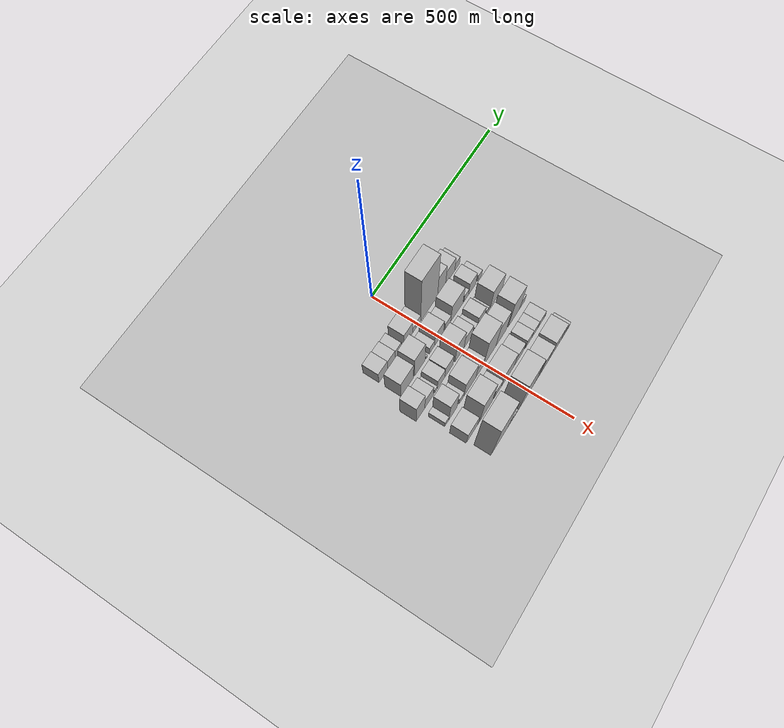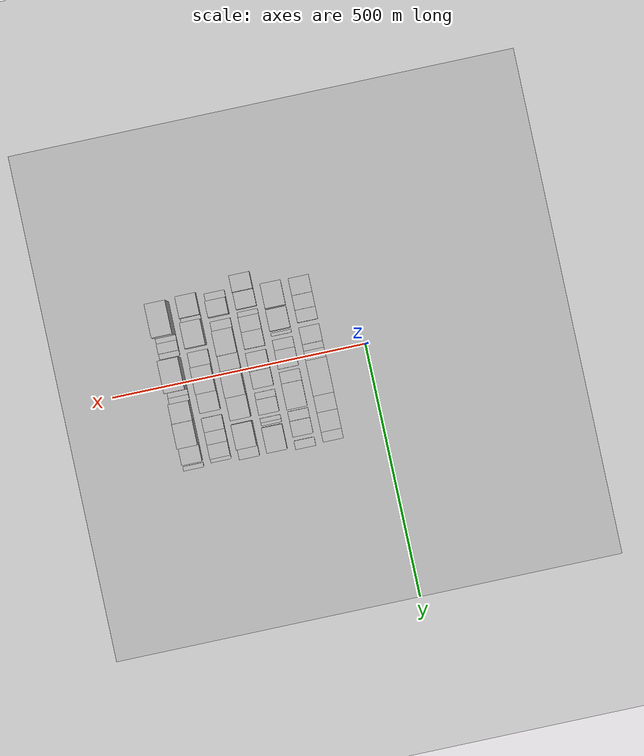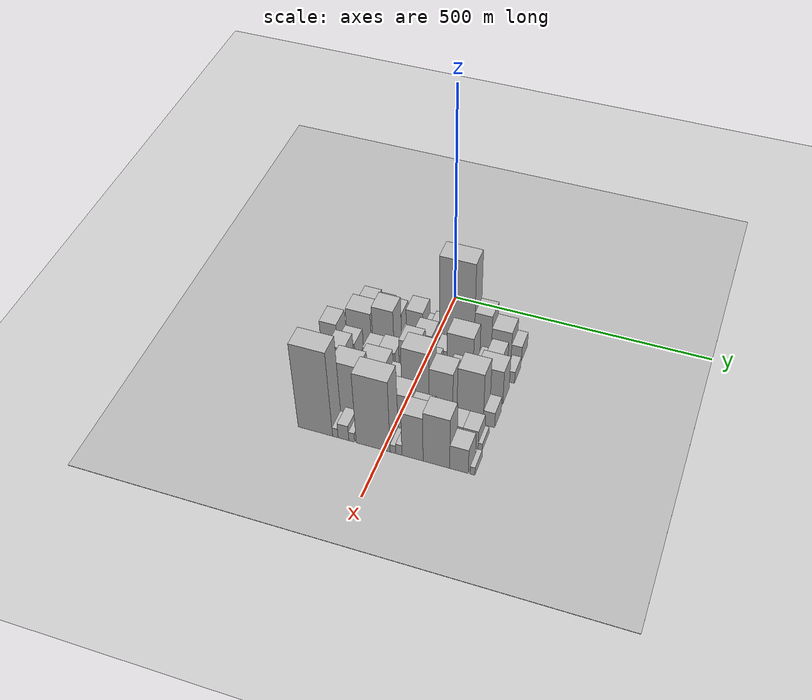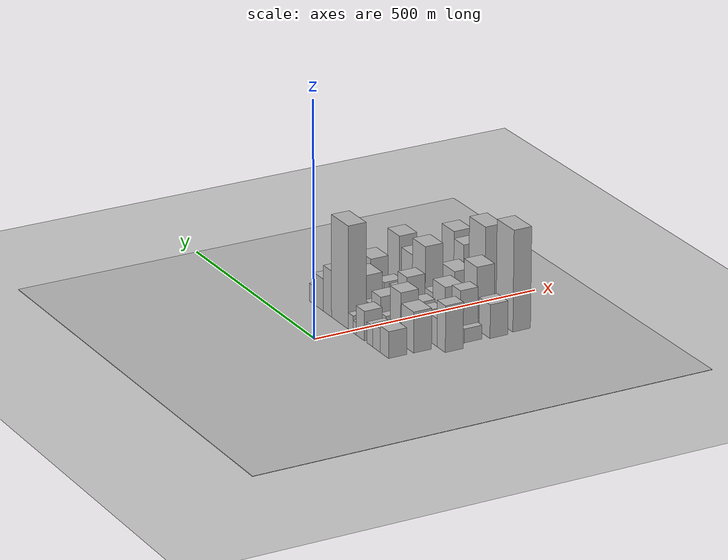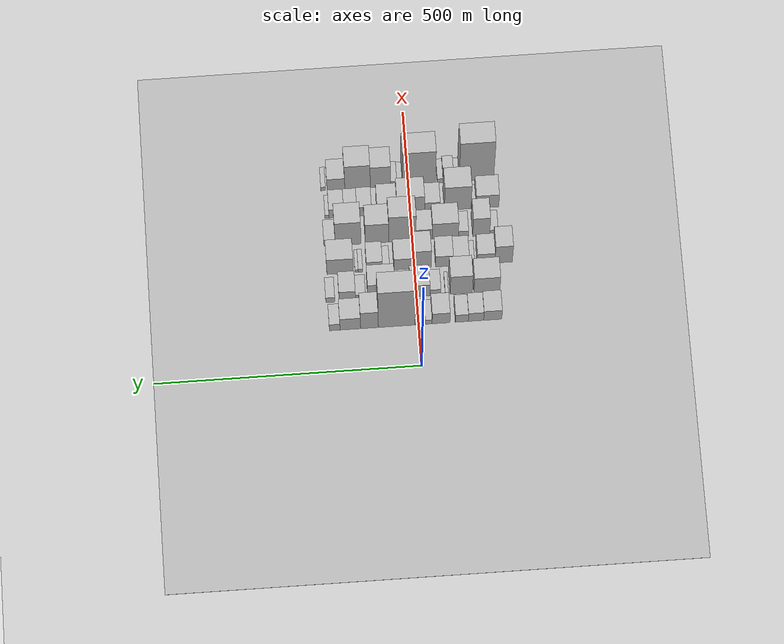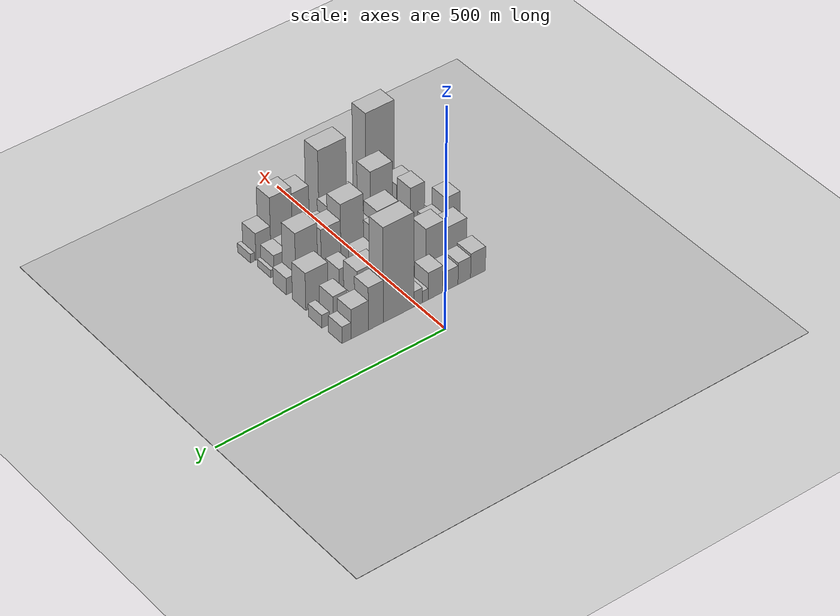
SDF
<sdf version="1.6">
 <world name="default">
  <include><name>ground_plane_1</name><uri>model://HANNAS_ground_plane</uri></include>
  <include>
   <name>ground_plane_2</name>
   <uri>model://HANNAS_ground_plane</uri>
   <pose>100 0 0  0 0 0</pose>
  </include>
  <model name="building_23">
   <static>1</static>
   <pose>100.0000 -137.2000 0 0.000000 0.000000 0.000000</pose>
   <link name="link">
    <pose>0 0 28.50 0 0 0</pose>
    <collision name="collision"><geometry><box><size>40.0000 33.9821 57.0000</size></box></geometry></collision>
    <visual name="visual">
     <cast_shadows>0</cast_shadows>
     <geometry><box><size>40.0000 33.9821 57.0000</size></box></geometry>
     <material>
      <script>
       <uri>model://HANNAS_wall/materials/scripts</uri>
       <uri>model://HANNAS_wall/materials/textures</uri>
       <name>vrc/HANNAS_wall</name>
      </script>
     </material>
    </visual>
   </link>
  </model>
  <model name="building_24">
   <static>1</static>
   <pose>100.0000 -105.8608 0 0.000000 0.000000 0.000000</pose>
   <link name="link">
    <pose>0 0 25.50 0 0 0</pose>
    <collision name="collision"><geometry><box><size>40.0000 28.6963 51.0000</size></box></geometry></collision>
    <visual name="visual">
     <cast_shadows>0</cast_shadows>
     <geometry><box><size>40.0000 28.6963 51.0000</size></box></geometry>
     <material>
      <script>
       <uri>model://HANNAS_wall/materials/scripts</uri>
       <uri>model://HANNAS_wall/materials/textures</uri>
       <name>vrc/HANNAS_wall</name>
      </script>
     </material>
    </visual>
   </link>
  </model>
  <model name="building_25">
   <static>1</static>
   <pose>100.0000 -79.3801 0 0.000000 0.000000 0.000000</pose>
   <link name="link">
    <pose>0 0 22.50 0 0 0</pose>
    <collision name="collision"><geometry><box><size>40.0000 24.2652 45.0000</size></box></geometry></collision>
    <visual name="visual">
     <cast_shadows>0</cast_shadows>
     <geometry><box><size>40.0000 24.2652 45.0000</size></box></geometry>
     <material>
      <script>
       <uri>model://HANNAS_wall/materials/scripts</uri>
       <uri>model://HANNAS_wall/materials/textures</uri>
       <name>vrc/HANNAS_wall</name>
      </script>
     </material>
    </visual>
   </link>
  </model>
  <model name="building_26">
   <static>1</static>
   <pose>100.0000 -40.5828 0 0.000000 0.000000 0.000000</pose>
   <link name="link">
    <pose>0 0 31.50 0 0 0</pose>
    <collision name="collision"><geometry><box><size>40.0000 33.3293 63.0000</size></box></geometry></collision>
    <visual name="visual">
     <cast_shadows>0</cast_shadows>
     <geometry><box><size>40.0000 33.3293 63.0000</size></box></geometry>
     <material>
      <script>
       <uri>model://HANNAS_wall/materials/scripts</uri>
       <uri>model://HANNAS_wall/materials/textures</uri>
       <name>vrc/HANNAS_wall</name>
      </script>
     </material>
    </visual>
   </link>
  </model>
  <model name="building_27">
   <static>1</static>
   <pose>100.0000 -17.4925 0 0.000000 0.000000 0.000000</pose>
   <link name="link">
    <pose>0 0 13.50 0 0 0</pose>
    <collision name="collision"><geometry><box><size>40.0000 12.8513 27.0000</size></box></geometry></collision>
    <visual name="visual">
     <cast_shadows>0</cast_shadows>
     <geometry><box><size>40.0000 12.8513 27.0000</size></box></geometry>
     <material>
      <script>
       <uri>model://HANNAS_wall/materials/scripts</uri>
       <uri>model://HANNAS_wall/materials/textures</uri>
       <name>vrc/HANNAS_wall</name>
      </script>
     </material>
    </visual>
   </link>
  </model>
  <model name="building_28">
   <static>1</static>
   <pose>100.0000 -1.4710 0 0.000000 0.000000 0.000000</pose>
   <link name="link">
    <pose>0 0 18.00 0 0 0</pose>
    <collision name="collision"><geometry><box><size>40.0000 19.1918 36.0000</size></box></geometry></collision>
    <visual name="visual">
     <cast_shadows>0</cast_shadows>
     <geometry><box><size>40.0000 19.1918 36.0000</size></box></geometry>
     <material>
      <script>
       <uri>model://HANNAS_wall/materials/scripts</uri>
       <uri>model://HANNAS_wall/materials/textures</uri>
       <name>vrc/HANNAS_wall</name>
      </script>
     </material>
    </visual>
   </link>
  </model>
  <model name="building_29">
   <static>1</static>
   <pose>100.0000 42.3173 0 0.000000 0.000000 0.000000</pose>
   <link name="link">
    <pose>0 0 109.50 0 0 0</pose>
    <collision name="collision"><geometry><box><size>40.0000 68.3846 219.0000</size></box></geometry></collision>
    <visual name="visual">
     <cast_shadows>0</cast_shadows>
     <geometry><box><size>40.0000 68.3846 219.0000</size></box></geometry>
     <material>
      <script>
       <uri>model://HANNAS_wall/materials/scripts</uri>
       <uri>model://HANNAS_wall/materials/textures</uri>
       <name>vrc/HANNAS_wall</name>
      </script>
     </material>
    </visual>
   </link>
  </model>
  <model name="building_30">
   <static>1</static>
   <pose>100.0000 93.0779 0 0.000000 0.000000 0.000000</pose>
   <link name="link">
    <pose>0 0 49.50 0 0 0</pose>
    <collision name="collision"><geometry><box><size>40.0000 33.1367 99.0000</size></box></geometry></collision>
    <visual name="visual">
     <cast_shadows>0</cast_shadows>
     <geometry><box><size>40.0000 33.1367 99.0000</size></box></geometry>
     <material>
      <script>
       <uri>model://HANNAS_wall/materials/scripts</uri>
       <uri>model://HANNAS_wall/materials/textures</uri>
       <name>vrc/HANNAS_wall</name>
      </script>
     </material>
    </visual>
   </link>
  </model>
  <model name="building_31">
   <static>1</static>
   <pose>100.0000 128.8266 0 0.000000 0.000000 0.000000</pose>
   <link name="link">
    <pose>0 0 34.50 0 0 0</pose>
    <collision name="collision"><geometry><box><size>40.0000 38.3606 69.0000</size></box></geometry></collision>
    <visual name="visual">
     <cast_shadows>0</cast_shadows>
     <geometry><box><size>40.0000 38.3606 69.0000</size></box></geometry>
     <material>
      <script>
       <uri>model://HANNAS_wall/materials/scripts</uri>
       <uri>model://HANNAS_wall/materials/textures</uri>
       <name>vrc/HANNAS_wall</name>
      </script>
     </material>
    </visual>
   </link>
  </model>
  <model name="building_32">
   <static>1</static>
   <pose>100.0000 157.9525 0 0.000000 0.000000 0.000000</pose>
   <link name="link">
    <pose>0 0 19.50 0 0 0</pose>
    <collision name="collision"><geometry><box><size>40.0000 19.8913 39.0000</size></box></geometry></collision>
    <visual name="visual">
     <cast_shadows>0</cast_shadows>
     <geometry><box><size>40.0000 19.8913 39.0000</size></box></geometry>
     <material>
      <script>
       <uri>model://HANNAS_wall/materials/scripts</uri>
       <uri>model://HANNAS_wall/materials/textures</uri>
       <name>vrc/HANNAS_wall</name>
      </script>
     </material>
    </visual>
   </link>
  </model>
  <model name="building_71">
   <static>1</static>
   <pose>155.0000 -130.4734 0 0.000000 0.000000 0.000000</pose>
   <link name="link">
    <pose>0 0 43.50 0 0 0</pose>
    <collision name="collision"><geometry><box><size>40.0000 48.5117 87.0000</size></box></geometry></collision>
    <visual name="visual">
     <cast_shadows>0</cast_shadows>
     <geometry><box><size>40.0000 48.5117 87.0000</size></box></geometry>
     <material>
      <script>
       <uri>model://HANNAS_wall/materials/scripts</uri>
       <uri>model://HANNAS_wall/materials/textures</uri>
       <name>vrc/HANNAS_wall</name>
      </script>
     </material>
    </visual>
   </link>
  </model>
  <model name="building_72">
   <static>1</static>
   <pose>155.0000 -82.3891 0 0.000000 0.000000 0.000000</pose>
   <link name="link">
    <pose>0 0 54.00 0 0 0</pose>
    <collision name="collision"><geometry><box><size>40.0000 41.6569 108.0000</size></box></geometry></collision>
    <visual name="visual">
     <cast_shadows>0</cast_shadows>
     <geometry><box><size>40.0000 41.6569 108.0000</size></box></geometry>
     <material>
      <script>
       <uri>model://HANNAS_wall/materials/scripts</uri>
       <uri>model://HANNAS_wall/materials/textures</uri>
       <name>vrc/HANNAS_wall</name>
      </script>
     </material>
    </visual>
   </link>
  </model>
  <model name="building_73">
   <static>1</static>
   <pose>155.0000 -55.4778 0 0.000000 0.000000 0.000000</pose>
   <link name="link">
    <pose>0 0 7.50 0 0 0</pose>
    <collision name="collision"><geometry><box><size>40.0000 6.1658 15.0000</size></box></geometry></collision>
    <visual name="visual">
     <cast_shadows>0</cast_shadows>
     <geometry><box><size>40.0000 6.1658 15.0000</size></box></geometry>
     <material>
      <script>
       <uri>model://HANNAS_wall/materials/scripts</uri>
       <uri>model://HANNAS_wall/materials/textures</uri>
       <name>vrc/HANNAS_wall</name>
      </script>
     </material>
    </visual>
   </link>
  </model>
  <model name="building_74">
   <static>1</static>
   <pose>155.0000 -34.0260 0 0.000000 0.000000 0.000000</pose>
   <link name="link">
    <pose>0 0 18.00 0 0 0</pose>
    <collision name="collision"><geometry><box><size>40.0000 20.7378 36.0000</size></box></geometry></collision>
    <visual name="visual">
     <cast_shadows>0</cast_shadows>
     <geometry><box><size>40.0000 20.7378 36.0000</size></box></geometry>
     <material>
      <script>
       <uri>model://HANNAS_wall/materials/scripts</uri>
       <uri>model://HANNAS_wall/materials/textures</uri>
       <name>vrc/HANNAS_wall</name>
      </script>
     </material>
    </visual>
   </link>
  </model>
  <model name="building_75">
   <static>1</static>
   <pose>155.0000 -5.4607 0 0.000000 0.000000 0.000000</pose>
   <link name="link">
    <pose>0 0 34.50 0 0 0</pose>
    <collision name="collision"><geometry><box><size>40.0000 36.3928 69.0000</size></box></geometry></collision>
    <visual name="visual">
     <cast_shadows>0</cast_shadows>
     <geometry><box><size>40.0000 36.3928 69.0000</size></box></geometry>
     <material>
      <script>
       <uri>model://HANNAS_wall/materials/scripts</uri>
       <uri>model://HANNAS_wall/materials/textures</uri>
       <name>vrc/HANNAS_wall</name>
      </script>
     </material>
    </visual>
   </link>
  </model>
  <model name="building_76">
   <static>1</static>
   <pose>155.0000 30.1104 0 0.000000 0.000000 0.000000</pose>
   <link name="link">
    <pose>0 0 19.50 0 0 0</pose>
    <collision name="collision"><geometry><box><size>40.0000 22.7493 39.0000</size></box></geometry></collision>
    <visual name="visual">
     <cast_shadows>0</cast_shadows>
     <geometry><box><size>40.0000 22.7493 39.0000</size></box></geometry>
     <material>
      <script>
       <uri>model://HANNAS_wall/materials/scripts</uri>
       <uri>model://HANNAS_wall/materials/textures</uri>
       <name>vrc/HANNAS_wall</name>
      </script>
     </material>
    </visual>
   </link>
  </model>
  <model name="building_77">
   <static>1</static>
   <pose>155.0000 66.9326 0 0.000000 0.000000 0.000000</pose>
   <link name="link">
    <pose>0 0 45.00 0 0 0</pose>
    <collision name="collision"><geometry><box><size>40.0000 50.8952 90.0000</size></box></geometry></collision>
    <visual name="visual">
     <cast_shadows>0</cast_shadows>
     <geometry><box><size>40.0000 50.8952 90.0000</size></box></geometry>
     <material>
      <script>
       <uri>model://HANNAS_wall/materials/scripts</uri>
       <uri>model://HANNAS_wall/materials/textures</uri>
       <name>vrc/HANNAS_wall</name>
      </script>
     </material>
    </visual>
   </link>
  </model>
  <model name="building_78">
   <static>1</static>
   <pose>155.0000 105.8786 0 0.000000 0.000000 0.000000</pose>
   <link name="link">
    <pose>0 0 16.50 0 0 0</pose>
    <collision name="collision"><geometry><box><size>40.0000 18.9969 33.0000</size></box></geometry></collision>
    <visual name="visual">
     <cast_shadows>0</cast_shadows>
     <geometry><box><size>40.0000 18.9969 33.0000</size></box></geometry>
     <material>
      <script>
       <uri>model://HANNAS_wall/materials/scripts</uri>
       <uri>model://HANNAS_wall/materials/textures</uri>
       <name>vrc/HANNAS_wall</name>
      </script>
     </material>
    </visual>
   </link>
  </model>
  <model name="building_79">
   <static>1</static>
   <pose>155.0000 130.7089 0 0.000000 0.000000 0.000000</pose>
   <link name="link">
    <pose>0 0 30.00 0 0 0</pose>
    <collision name="collision"><geometry><box><size>40.0000 30.6637 60.0000</size></box></geometry></collision>
    <visual name="visual">
     <cast_shadows>0</cast_shadows>
     <geometry><box><size>40.0000 30.6637 60.0000</size></box></geometry>
     <material>
      <script>
       <uri>model://HANNAS_wall/materials/scripts</uri>
       <uri>model://HANNAS_wall/materials/textures</uri>
       <name>vrc/HANNAS_wall</name>
      </script>
     </material>
    </visual>
   </link>
  </model>
  <model name="building_80">
   <static>1</static>
   <pose>155.0000 162.5400 0 0.000000 0.000000 0.000000</pose>
   <link name="link">
    <pose>0 0 15.00 0 0 0</pose>
    <collision name="collision"><geometry><box><size>40.0000 16.9986 30.0000</size></box></geometry></collision>
    <visual name="visual">
     <cast_shadows>0</cast_shadows>
     <geometry><box><size>40.0000 16.9986 30.0000</size></box></geometry>
     <material>
      <script>
       <uri>model://HANNAS_wall/materials/scripts</uri>
       <uri>model://HANNAS_wall/materials/textures</uri>
       <name>vrc/HANNAS_wall</name>
      </script>
     </material>
    </visual>
   </link>
  </model>
  <model name="building_124">
   <static>1</static>
   <pose>210.0000 -166.0199 0 0.000000 0.000000 0.000000</pose>
   <link name="link">
    <pose>0 0 49.50 0 0 0</pose>
    <collision name="collision"><geometry><box><size>40.0000 32.7210 99.0000</size></box></geometry></collision>
    <visual name="visual">
     <cast_shadows>0</cast_shadows>
     <geometry><box><size>40.0000 32.7210 99.0000</size></box></geometry>
     <material>
      <script>
       <uri>model://HANNAS_wall/materials/scripts</uri>
       <uri>model://HANNAS_wall/materials/textures</uri>
       <name>vrc/HANNAS_wall</name>
      </script>
     </material>
    </visual>
   </link>
  </model>
  <model name="building_125">
   <static>1</static>
   <pose>210.0000 -133.0223 0 0.000000 0.000000 0.000000</pose>
   <link name="link">
    <pose>0 0 30.00 0 0 0</pose>
    <collision name="collision"><geometry><box><size>40.0000 33.2743 60.0000</size></box></geometry></collision>
    <visual name="visual">
     <cast_shadows>0</cast_shadows>
     <geometry><box><size>40.0000 33.2743 60.0000</size></box></geometry>
     <material>
      <script>
       <uri>model://HANNAS_wall/materials/scripts</uri>
       <uri>model://HANNAS_wall/materials/textures</uri>
       <name>vrc/HANNAS_wall</name>
      </script>
     </material>
    </visual>
   </link>
  </model>
  <model name="building_126">
   <static>1</static>
   <pose>210.0000 -106.1887 0 0.000000 0.000000 0.000000</pose>
   <link name="link">
    <pose>0 0 12.00 0 0 0</pose>
    <collision name="collision"><geometry><box><size>40.0000 10.3928 24.0000</size></box></geometry></collision>
    <visual name="visual">
     <cast_shadows>0</cast_shadows>
     <geometry><box><size>40.0000 10.3928 24.0000</size></box></geometry>
     <material>
      <script>
       <uri>model://HANNAS_wall/materials/scripts</uri>
       <uri>model://HANNAS_wall/materials/textures</uri>
       <name>vrc/HANNAS_wall</name>
      </script>
     </material>
    </visual>
   </link>
  </model>
  <model name="building_127">
   <static>1</static>
   <pose>210.0000 -86.1601 0 0.000000 0.000000 0.000000</pose>
   <link name="link">
    <pose>0 0 28.50 0 0 0</pose>
    <collision name="collision"><geometry><box><size>40.0000 29.6645 57.0000</size></box></geometry></collision>
    <visual name="visual">
     <cast_shadows>0</cast_shadows>
     <geometry><box><size>40.0000 29.6645 57.0000</size></box></geometry>
     <material>
      <script>
       <uri>model://HANNAS_wall/materials/scripts</uri>
       <uri>model://HANNAS_wall/materials/textures</uri>
       <name>vrc/HANNAS_wall</name>
      </script>
     </material>
    </visual>
   </link>
  </model>
  <model name="building_128">
   <static>1</static>
   <pose>210.0000 -54.8213 0 0.000000 0.000000 0.000000</pose>
   <link name="link">
    <pose>0 0 31.50 0 0 0</pose>
    <collision name="collision"><geometry><box><size>40.0000 33.0132 63.0000</size></box></geometry></collision>
    <visual name="visual">
     <cast_shadows>0</cast_shadows>
     <geometry><box><size>40.0000 33.0132 63.0000</size></box></geometry>
     <material>
      <script>
       <uri>model://HANNAS_wall/materials/scripts</uri>
       <uri>model://HANNAS_wall/materials/textures</uri>
       <name>vrc/HANNAS_wall</name>
      </script>
     </material>
    </visual>
   </link>
  </model>
  <model name="building_129">
   <static>1</static>
   <pose>210.0000 -12.1908 0 0.000000 0.000000 0.000000</pose>
   <link name="link">
    <pose>0 0 51.00 0 0 0</pose>
    <collision name="collision"><geometry><box><size>40.0000 36.2478 102.0000</size></box></geometry></collision>
    <visual name="visual">
     <cast_shadows>0</cast_shadows>
     <geometry><box><size>40.0000 36.2478 102.0000</size></box></geometry>
     <material>
      <script>
       <uri>model://HANNAS_wall/materials/scripts</uri>
       <uri>model://HANNAS_wall/materials/textures</uri>
       <name>vrc/HANNAS_wall</name>
      </script>
     </material>
    </visual>
   </link>
  </model>
  <model name="building_130">
   <static>1</static>
   <pose>210.0000 22.8909 0 0.000000 0.000000 0.000000</pose>
   <link name="link">
    <pose>0 0 31.50 0 0 0</pose>
    <collision name="collision"><geometry><box><size>40.0000 33.9156 63.0000</size></box></geometry></collision>
    <visual name="visual">
     <cast_shadows>0</cast_shadows>
     <geometry><box><size>40.0000 33.9156 63.0000</size></box></geometry>
     <material>
      <script>
       <uri>model://HANNAS_wall/materials/scripts</uri>
       <uri>model://HANNAS_wall/materials/textures</uri>
       <name>vrc/HANNAS_wall</name>
      </script>
     </material>
    </visual>
   </link>
  </model>
  <model name="building_131">
   <static>1</static>
   <pose>210.0000 54.5487 0 0.000000 0.000000 0.000000</pose>
   <link name="link">
    <pose>0 0 13.50 0 0 0</pose>
    <collision name="collision"><geometry><box><size>40.0000 13.3999 27.0000</size></box></geometry></collision>
    <visual name="visual">
     <cast_shadows>0</cast_shadows>
     <geometry><box><size>40.0000 13.3999 27.0000</size></box></geometry>
     <material>
      <script>
       <uri>model://HANNAS_wall/materials/scripts</uri>
       <uri>model://HANNAS_wall/materials/textures</uri>
       <name>vrc/HANNAS_wall</name>
      </script>
     </material>
    </visual>
   </link>
  </model>
  <model name="building_132">
   <static>1</static>
   <pose>210.0000 76.2007 0 0.000000 0.000000 0.000000</pose>
   <link name="link">
    <pose>0 0 28.50 0 0 0</pose>
    <collision name="collision"><geometry><box><size>40.0000 29.9041 57.0000</size></box></geometry></collision>
    <visual name="visual">
     <cast_shadows>0</cast_shadows>
     <geometry><box><size>40.0000 29.9041 57.0000</size></box></geometry>
     <material>
      <script>
       <uri>model://HANNAS_wall/materials/scripts</uri>
       <uri>model://HANNAS_wall/materials/textures</uri>
       <name>vrc/HANNAS_wall</name>
      </script>
     </material>
    </visual>
   </link>
  </model>
  <model name="building_133">
   <static>1</static>
   <pose>210.0000 102.4348 0 0.000000 0.000000 0.000000</pose>
   <link name="link">
    <pose>0 0 9.00 0 0 0</pose>
    <collision name="collision"><geometry><box><size>40.0000 8.5641 18.0000</size></box></geometry></collision>
    <visual name="visual">
     <cast_shadows>0</cast_shadows>
     <geometry><box><size>40.0000 8.5641 18.0000</size></box></geometry>
     <material>
      <script>
       <uri>model://HANNAS_wall/materials/scripts</uri>
       <uri>model://HANNAS_wall/materials/textures</uri>
       <name>vrc/HANNAS_wall</name>
      </script>
     </material>
    </visual>
   </link>
  </model>
  <model name="building_134">
   <static>1</static>
   <pose>210.0000 109.7560 0 0.000000 0.000000 0.000000</pose>
   <link name="link">
    <pose>0 0 7.50 0 0 0</pose>
    <collision name="collision"><geometry><box><size>40.0000 6.0784 15.0000</size></box></geometry></collision>
    <visual name="visual">
     <cast_shadows>0</cast_shadows>
     <geometry><box><size>40.0000 6.0784 15.0000</size></box></geometry>
     <material>
      <script>
       <uri>model://HANNAS_wall/materials/scripts</uri>
       <uri>model://HANNAS_wall/materials/textures</uri>
       <name>vrc/HANNAS_wall</name>
      </script>
     </material>
    </visual>
   </link>
  </model>
  <model name="building_135">
   <static>1</static>
   <pose>210.0000 140.5947 0 0.000000 0.000000 0.000000</pose>
   <link name="link">
    <pose>0 0 43.50 0 0 0</pose>
    <collision name="collision"><geometry><box><size>40.0000 49.5991 87.0000</size></box></geometry></collision>
    <visual name="visual">
     <cast_shadows>0</cast_shadows>
     <geometry><box><size>40.0000 49.5991 87.0000</size></box></geometry>
     <material>
      <script>
       <uri>model://HANNAS_wall/materials/scripts</uri>
       <uri>model://HANNAS_wall/materials/textures</uri>
       <name>vrc/HANNAS_wall</name>
      </script>
     </material>
    </visual>
   </link>
  </model>
  <model name="building_179">
   <static>1</static>
   <pose>265.0000 -151.9052 0 0.000000 0.000000 0.000000</pose>
   <link name="link">
    <pose>0 0 15.00 0 0 0</pose>
    <collision name="collision"><geometry><box><size>40.0000 15.7053 30.0000</size></box></geometry></collision>
    <visual name="visual">
     <cast_shadows>0</cast_shadows>
     <geometry><box><size>40.0000 15.7053 30.0000</size></box></geometry>
     <material>
      <script>
       <uri>model://HANNAS_wall/materials/scripts</uri>
       <uri>model://HANNAS_wall/materials/textures</uri>
       <name>vrc/HANNAS_wall</name>
      </script>
     </material>
    </visual>
   </link>
  </model>
  <model name="building_180">
   <static>1</static>
   <pose>265.0000 -128.1271 0 0.000000 0.000000 0.000000</pose>
   <link name="link">
    <pose>0 0 52.50 0 0 0</pose>
    <collision name="collision"><geometry><box><size>40.0000 31.8509 105.0000</size></box></geometry></collision>
    <visual name="visual">
     <cast_shadows>0</cast_shadows>
     <geometry><box><size>40.0000 31.8509 105.0000</size></box></geometry>
     <material>
      <script>
       <uri>model://HANNAS_wall/materials/scripts</uri>
       <uri>model://HANNAS_wall/materials/textures</uri>
       <name>vrc/HANNAS_wall</name>
      </script>
     </material>
    </visual>
   </link>
  </model>
  <model name="building_181">
   <static>1</static>
   <pose>265.0000 -94.6995 0 0.000000 0.000000 0.000000</pose>
   <link name="link">
    <pose>0 0 18.00 0 0 0</pose>
    <collision name="collision"><geometry><box><size>40.0000 19.0044 36.0000</size></box></geometry></collision>
    <visual name="visual">
     <cast_shadows>0</cast_shadows>
     <geometry><box><size>40.0000 19.0044 36.0000</size></box></geometry>
     <material>
      <script>
       <uri>model://HANNAS_wall/materials/scripts</uri>
       <uri>model://HANNAS_wall/materials/textures</uri>
       <name>vrc/HANNAS_wall</name>
      </script>
     </material>
    </visual>
   </link>
  </model>
  <model name="building_182">
   <static>1</static>
   <pose>265.0000 -60.7194 0 0.000000 0.000000 0.000000</pose>
   <link name="link">
    <pose>0 0 45.00 0 0 0</pose>
    <collision name="collision"><geometry><box><size>40.0000 48.9558 90.0000</size></box></geometry></collision>
    <visual name="visual">
     <cast_shadows>0</cast_shadows>
     <geometry><box><size>40.0000 48.9558 90.0000</size></box></geometry>
     <material>
      <script>
       <uri>model://HANNAS_wall/materials/scripts</uri>
       <uri>model://HANNAS_wall/materials/textures</uri>
       <name>vrc/HANNAS_wall</name>
      </script>
     </material>
    </visual>
   </link>
  </model>
  <model name="building_183">
   <static>1</static>
   <pose>265.0000 -20.9173 0 0.000000 0.000000 0.000000</pose>
   <link name="link">
    <pose>0 0 30.00 0 0 0</pose>
    <collision name="collision"><geometry><box><size>40.0000 30.6484 60.0000</size></box></geometry></collision>
    <visual name="visual">
     <cast_shadows>0</cast_shadows>
     <geometry><box><size>40.0000 30.6484 60.0000</size></box></geometry>
     <material>
      <script>
       <uri>model://HANNAS_wall/materials/scripts</uri>
       <uri>model://HANNAS_wall/materials/textures</uri>
       <name>vrc/HANNAS_wall</name>
      </script>
     </material>
    </visual>
   </link>
  </model>
  <model name="building_184">
   <static>1</static>
   <pose>265.0000 20.0325 0 0.000000 0.000000 0.000000</pose>
   <link name="link">
    <pose>0 0 73.50 0 0 0</pose>
    <collision name="collision"><geometry><box><size>40.0000 51.2513 147.0000</size></box></geometry></collision>
    <visual name="visual">
     <cast_shadows>0</cast_shadows>
     <geometry><box><size>40.0000 51.2513 147.0000</size></box></geometry>
     <material>
      <script>
       <uri>model://HANNAS_wall/materials/scripts</uri>
       <uri>model://HANNAS_wall/materials/textures</uri>
       <name>vrc/HANNAS_wall</name>
      </script>
     </material>
    </visual>
   </link>
  </model>
  <model name="building_185">
   <static>1</static>
   <pose>265.0000 67.6615 0 0.000000 0.000000 0.000000</pose>
   <link name="link">
    <pose>0 0 55.50 0 0 0</pose>
    <collision name="collision"><geometry><box><size>40.0000 44.0066 111.0000</size></box></geometry></collision>
    <visual name="visual">
     <cast_shadows>0</cast_shadows>
     <geometry><box><size>40.0000 44.0066 111.0000</size></box></geometry>
     <material>
      <script>
       <uri>model://HANNAS_wall/materials/scripts</uri>
       <uri>model://HANNAS_wall/materials/textures</uri>
       <name>vrc/HANNAS_wall</name>
      </script>
     </material>
    </visual>
   </link>
  </model>
  <model name="building_186">
   <static>1</static>
   <pose>265.0000 121.9704 0 0.000000 0.000000 0.000000</pose>
   <link name="link">
    <pose>0 0 66.00 0 0 0</pose>
    <collision name="collision"><geometry><box><size>40.0000 48.6113 132.0000</size></box></geometry></collision>
    <visual name="visual">
     <cast_shadows>0</cast_shadows>
     <geometry><box><size>40.0000 48.6113 132.0000</size></box></geometry>
     <material>
      <script>
       <uri>model://HANNAS_wall/materials/scripts</uri>
       <uri>model://HANNAS_wall/materials/textures</uri>
       <name>vrc/HANNAS_wall</name>
      </script>
     </material>
    </visual>
   </link>
  </model>
  <model name="building_187">
   <static>1</static>
   <pose>265.0000 156.8510 0 0.000000 0.000000 0.000000</pose>
   <link name="link">
    <pose>0 0 19.50 0 0 0</pose>
    <collision name="collision"><geometry><box><size>40.0000 21.1498 39.0000</size></box></geometry></collision>
    <visual name="visual">
     <cast_shadows>0</cast_shadows>
     <geometry><box><size>40.0000 21.1498 39.0000</size></box></geometry>
     <material>
      <script>
       <uri>model://HANNAS_wall/materials/scripts</uri>
       <uri>model://HANNAS_wall/materials/textures</uri>
       <name>vrc/HANNAS_wall</name>
      </script>
     </material>
    </visual>
   </link>
  </model>
  <model name="building_229">
   <static>1</static>
   <pose>320.0000 -144.0290 0 0.000000 0.000000 0.000000</pose>
   <link name="link">
    <pose>0 0 36.00 0 0 0</pose>
    <collision name="collision"><geometry><box><size>40.0000 42.8596 72.0000</size></box></geometry></collision>
    <visual name="visual">
     <cast_shadows>0</cast_shadows>
     <geometry><box><size>40.0000 42.8596 72.0000</size></box></geometry>
     <material>
      <script>
       <uri>model://HANNAS_wall/materials/scripts</uri>
       <uri>model://HANNAS_wall/materials/textures</uri>
       <name>vrc/HANNAS_wall</name>
      </script>
     </material>
    </visual>
   </link>
  </model>
  <model name="building_230">
   <static>1</static>
   <pose>320.0000 -117.9136 0 0.000000 0.000000 0.000000</pose>
   <link name="link">
    <pose>0 0 10.50 0 0 0</pose>
    <collision name="collision"><geometry><box><size>40.0000 9.3712 21.0000</size></box></geometry></collision>
    <visual name="visual">
     <cast_shadows>0</cast_shadows>
     <geometry><box><size>40.0000 9.3712 21.0000</size></box></geometry>
     <material>
      <script>
       <uri>model://HANNAS_wall/materials/scripts</uri>
       <uri>model://HANNAS_wall/materials/textures</uri>
       <name>vrc/HANNAS_wall</name>
      </script>
     </material>
    </visual>
   </link>
  </model>
  <model name="building_231">
   <static>1</static>
   <pose>320.0000 -88.0555 0 0.000000 0.000000 0.000000</pose>
   <link name="link">
    <pose>0 0 66.00 0 0 0</pose>
    <collision name="collision"><geometry><box><size>40.0000 50.3448 132.0000</size></box></geometry></collision>
    <visual name="visual">
     <cast_shadows>0</cast_shadows>
     <geometry><box><size>40.0000 50.3448 132.0000</size></box></geometry>
     <material>
      <script>
       <uri>model://HANNAS_wall/materials/scripts</uri>
       <uri>model://HANNAS_wall/materials/textures</uri>
       <name>vrc/HANNAS_wall</name>
      </script>
     </material>
    </visual>
   </link>
  </model>
  <model name="building_232">
   <static>1</static>
   <pose>320.0000 -40.1724 0 0.000000 0.000000 0.000000</pose>
   <link name="link">
    <pose>0 0 25.50 0 0 0</pose>
    <collision name="collision"><geometry><box><size>40.0000 29.4215 51.0000</size></box></geometry></collision>
    <visual name="visual">
     <cast_shadows>0</cast_shadows>
     <geometry><box><size>40.0000 29.4215 51.0000</size></box></geometry>
     <material>
      <script>
       <uri>model://HANNAS_wall/materials/scripts</uri>
       <uri>model://HANNAS_wall/materials/textures</uri>
       <name>vrc/HANNAS_wall</name>
      </script>
     </material>
    </visual>
   </link>
  </model>
  <model name="building_233">
   <static>1</static>
   <pose>320.0000 0.6732 0 0.000000 0.000000 0.000000</pose>
   <link name="link">
    <pose>0 0 45.00 0 0 0</pose>
    <collision name="collision"><geometry><box><size>40.0000 52.2697 90.0000</size></box></geometry></collision>
    <visual name="visual">
     <cast_shadows>0</cast_shadows>
     <geometry><box><size>40.0000 52.2697 90.0000</size></box></geometry>
     <material>
      <script>
       <uri>model://HANNAS_wall/materials/scripts</uri>
       <uri>model://HANNAS_wall/materials/textures</uri>
       <name>vrc/HANNAS_wall</name>
      </script>
     </material>
    </visual>
   </link>
  </model>
  <model name="building_234">
   <static>1</static>
   <pose>320.0000 45.4382 0 0.000000 0.000000 0.000000</pose>
   <link name="link">
    <pose>0 0 31.50 0 0 0</pose>
    <collision name="collision"><geometry><box><size>40.0000 37.2603 63.0000</size></box></geometry></collision>
    <visual name="visual">
     <cast_shadows>0</cast_shadows>
     <geometry><box><size>40.0000 37.2603 63.0000</size></box></geometry>
     <material>
      <script>
       <uri>model://HANNAS_wall/materials/scripts</uri>
       <uri>model://HANNAS_wall/materials/textures</uri>
       <name>vrc/HANNAS_wall</name>
      </script>
     </material>
    </visual>
   </link>
  </model>
  <model name="building_235">
   <static>1</static>
   <pose>320.0000 87.8827 0 0.000000 0.000000 0.000000</pose>
   <link name="link">
    <pose>0 0 25.50 0 0 0</pose>
    <collision name="collision"><geometry><box><size>40.0000 27.6287 51.0000</size></box></geometry></collision>
    <visual name="visual">
     <cast_shadows>0</cast_shadows>
     <geometry><box><size>40.0000 27.6287 51.0000</size></box></geometry>
     <material>
      <script>
       <uri>model://HANNAS_wall/materials/scripts</uri>
       <uri>model://HANNAS_wall/materials/textures</uri>
       <name>vrc/HANNAS_wall</name>
      </script>
     </material>
    </visual>
   </link>
  </model>
  <model name="building_236">
   <static>1</static>
   <pose>320.0000 114.0612 0 0.000000 0.000000 0.000000</pose>
   <link name="link">
    <pose>0 0 24.00 0 0 0</pose>
    <collision name="collision"><geometry><box><size>40.0000 24.7283 48.0000</size></box></geometry></collision>
    <visual name="visual">
     <cast_shadows>0</cast_shadows>
     <geometry><box><size>40.0000 24.7283 48.0000</size></box></geometry>
     <material>
      <script>
       <uri>model://HANNAS_wall/materials/scripts</uri>
       <uri>model://HANNAS_wall/materials/textures</uri>
       <name>vrc/HANNAS_wall</name>
      </script>
     </material>
    </visual>
   </link>
  </model>
  <model name="building_237">
   <static>1</static>
   <pose>320.0000 140.4233 0 0.000000 0.000000 0.000000</pose>
   <link name="link">
    <pose>0 0 24.00 0 0 0</pose>
    <collision name="collision"><geometry><box><size>40.0000 27.9959 48.0000</size></box></geometry></collision>
    <visual name="visual">
     <cast_shadows>0</cast_shadows>
     <geometry><box><size>40.0000 27.9959 48.0000</size></box></geometry>
     <material>
      <script>
       <uri>model://HANNAS_wall/materials/scripts</uri>
       <uri>model://HANNAS_wall/materials/textures</uri>
       <name>vrc/HANNAS_wall</name>
      </script>
     </material>
    </visual>
   </link>
  </model>
  <model name="building_238">
   <static>1</static>
   <pose>320.0000 158.1561 0 0.000000 0.000000 0.000000</pose>
   <link name="link">
    <pose>0 0 9.00 0 0 0</pose>
    <collision name="collision"><geometry><box><size>40.0000 7.4696 18.0000</size></box></geometry></collision>
    <visual name="visual">
     <cast_shadows>0</cast_shadows>
     <geometry><box><size>40.0000 7.4696 18.0000</size></box></geometry>
     <material>
      <script>
       <uri>model://HANNAS_wall/materials/scripts</uri>
       <uri>model://HANNAS_wall/materials/textures</uri>
       <name>vrc/HANNAS_wall</name>
      </script>
     </material>
    </visual>
   </link>
  </model>
  <model name="building_286">
   <static>1</static>
   <pose>375.0000 -127.3385 0 0.000000 0.000000 0.000000</pose>
   <link name="link">
    <pose>0 0 108.00 0 0 0</pose>
    <collision name="collision"><geometry><box><size>40.0000 65.1609 216.0000</size></box></geometry></collision>
    <visual name="visual">
     <cast_shadows>0</cast_shadows>
     <geometry><box><size>40.0000 65.1609 216.0000</size></box></geometry>
     <material>
      <script>
       <uri>model://HANNAS_wall/materials/scripts</uri>
       <uri>model://HANNAS_wall/materials/textures</uri>
       <name>vrc/HANNAS_wall</name>
      </script>
     </material>
    </visual>
   </link>
  </model>
  <model name="building_287">
   <static>1</static>
   <pose>375.0000 -89.5445 0 0.000000 0.000000 0.000000</pose>
   <link name="link">
    <pose>0 0 12.00 0 0 0</pose>
    <collision name="collision"><geometry><box><size>40.0000 10.4271 24.0000</size></box></geometry></collision>
    <visual name="visual">
     <cast_shadows>0</cast_shadows>
     <geometry><box><size>40.0000 10.4271 24.0000</size></box></geometry>
     <material>
      <script>
       <uri>model://HANNAS_wall/materials/scripts</uri>
       <uri>model://HANNAS_wall/materials/textures</uri>
       <name>vrc/HANNAS_wall</name>
      </script>
     </material>
    </visual>
   </link>
  </model>
  <model name="building_288">
   <static>1</static>
   <pose>375.0000 -74.2941 0 0.000000 0.000000 0.000000</pose>
   <link name="link">
    <pose>0 0 19.50 0 0 0</pose>
    <collision name="collision"><geometry><box><size>40.0000 20.0737 39.0000</size></box></geometry></collision>
    <visual name="visual">
     <cast_shadows>0</cast_shadows>
     <geometry><box><size>40.0000 20.0737 39.0000</size></box></geometry>
     <material>
      <script>
       <uri>model://HANNAS_wall/materials/scripts</uri>
       <uri>model://HANNAS_wall/materials/textures</uri>
       <name>vrc/HANNAS_wall</name>
      </script>
     </material>
    </visual>
   </link>
  </model>
  <model name="building_289">
   <static>1</static>
   <pose>375.0000 -58.8557 0 0.000000 0.000000 0.000000</pose>
   <link name="link">
    <pose>0 0 12.00 0 0 0</pose>
    <collision name="collision"><geometry><box><size>40.0000 10.8030 24.0000</size></box></geometry></collision>
    <visual name="visual">
     <cast_shadows>0</cast_shadows>
     <geometry><box><size>40.0000 10.8030 24.0000</size></box></geometry>
     <material>
      <script>
       <uri>model://HANNAS_wall/materials/scripts</uri>
       <uri>model://HANNAS_wall/materials/textures</uri>
       <name>vrc/HANNAS_wall</name>
      </script>
     </material>
    </visual>
   </link>
  </model>
  <model name="building_290">
   <static>1</static>
   <pose>375.0000 -18.9090 0 0.000000 0.000000 0.000000</pose>
   <link name="link">
    <pose>0 0 91.50 0 0 0</pose>
    <collision name="collision"><geometry><box><size>40.0000 63.0904 183.0000</size></box></geometry></collision>
    <visual name="visual">
     <cast_shadows>0</cast_shadows>
     <geometry><box><size>40.0000 63.0904 183.0000</size></box></geometry>
     <material>
      <script>
       <uri>model://HANNAS_wall/materials/scripts</uri>
       <uri>model://HANNAS_wall/materials/textures</uri>
       <name>vrc/HANNAS_wall</name>
      </script>
     </material>
    </visual>
   </link>
  </model>
  <model name="building_291">
   <static>1</static>
   <pose>375.0000 17.7615 0 0.000000 0.000000 0.000000</pose>
   <link name="link">
    <pose>0 0 10.50 0 0 0</pose>
    <collision name="collision"><geometry><box><size>40.0000 10.2507 21.0000</size></box></geometry></collision>
    <visual name="visual">
     <cast_shadows>0</cast_shadows>
     <geometry><box><size>40.0000 10.2507 21.0000</size></box></geometry>
     <material>
      <script>
       <uri>model://HANNAS_wall/materials/scripts</uri>
       <uri>model://HANNAS_wall/materials/textures</uri>
       <name>vrc/HANNAS_wall</name>
      </script>
     </material>
    </visual>
   </link>
  </model>
  <model name="building_292">
   <static>1</static>
   <pose>375.0000 28.5986 0 0.000000 0.000000 0.000000</pose>
   <link name="link">
    <pose>0 0 13.50 0 0 0</pose>
    <collision name="collision"><geometry><box><size>40.0000 11.4234 27.0000</size></box></geometry></collision>
    <visual name="visual">
     <cast_shadows>0</cast_shadows>
     <geometry><box><size>40.0000 11.4234 27.0000</size></box></geometry>
     <material>
      <script>
       <uri>model://HANNAS_wall/materials/scripts</uri>
       <uri>model://HANNAS_wall/materials/textures</uri>
       <name>vrc/HANNAS_wall</name>
      </script>
     </material>
    </visual>
   </link>
  </model>
  <model name="building_293">
   <static>1</static>
   <pose>375.0000 53.5568 0 0.000000 0.000000 0.000000</pose>
   <link name="link">
    <pose>0 0 57.00 0 0 0</pose>
    <collision name="collision"><geometry><box><size>40.0000 38.4930 114.0000</size></box></geometry></collision>
    <visual name="visual">
     <cast_shadows>0</cast_shadows>
     <geometry><box><size>40.0000 38.4930 114.0000</size></box></geometry>
     <material>
      <script>
       <uri>model://HANNAS_wall/materials/scripts</uri>
       <uri>model://HANNAS_wall/materials/textures</uri>
       <name>vrc/HANNAS_wall</name>
      </script>
     </material>
    </visual>
   </link>
  </model>
  <model name="building_294">
   <static>1</static>
   <pose>375.0000 96.9199 0 0.000000 0.000000 0.000000</pose>
   <link name="link">
    <pose>0 0 64.50 0 0 0</pose>
    <collision name="collision"><geometry><box><size>40.0000 48.2332 129.0000</size></box></geometry></collision>
    <visual name="visual">
     <cast_shadows>0</cast_shadows>
     <geometry><box><size>40.0000 48.2332 129.0000</size></box></geometry>
     <material>
      <script>
       <uri>model://HANNAS_wall/materials/scripts</uri>
       <uri>model://HANNAS_wall/materials/textures</uri>
       <name>vrc/HANNAS_wall</name>
      </script>
     </material>
    </visual>
   </link>
  </model>
  <model name="building_295">
   <static>1</static>
   <pose>375.0000 137.7478 0 0.000000 0.000000 0.000000</pose>
   <link name="link">
    <pose>0 0 31.50 0 0 0</pose>
    <collision name="collision"><geometry><box><size>40.0000 33.4226 63.0000</size></box></geometry></collision>
    <visual name="visual">
     <cast_shadows>0</cast_shadows>
     <geometry><box><size>40.0000 33.4226 63.0000</size></box></geometry>
     <material>
      <script>
       <uri>model://HANNAS_wall/materials/scripts</uri>
       <uri>model://HANNAS_wall/materials/textures</uri>
       <name>vrc/HANNAS_wall</name>
      </script>
     </material>
    </visual>
   </link>
  </model>
  <model name="building_296">
   <static>1</static>
   <pose>375.0000 161.8680 0 0.000000 0.000000 0.000000</pose>
   <link name="link">
    <pose>0 0 10.50 0 0 0</pose>
    <collision name="collision"><geometry><box><size>40.0000 8.8176 21.0000</size></box></geometry></collision>
    <visual name="visual">
     <cast_shadows>0</cast_shadows>
     <geometry><box><size>40.0000 8.8176 21.0000</size></box></geometry>
     <material>
      <script>
       <uri>model://HANNAS_wall/materials/scripts</uri>
       <uri>model://HANNAS_wall/materials/textures</uri>
       <name>vrc/HANNAS_wall</name>
      </script>
     </material>
    </visual>
   </link>
  </model>
 </world>
</sdf>
